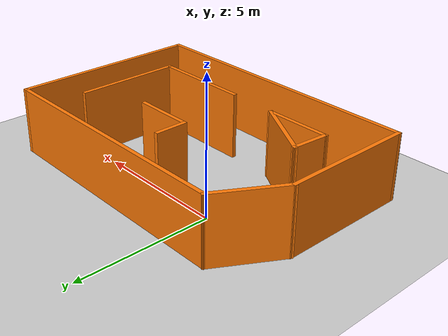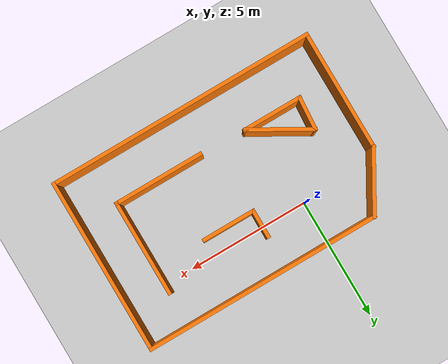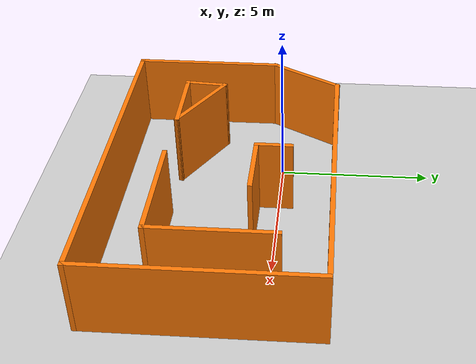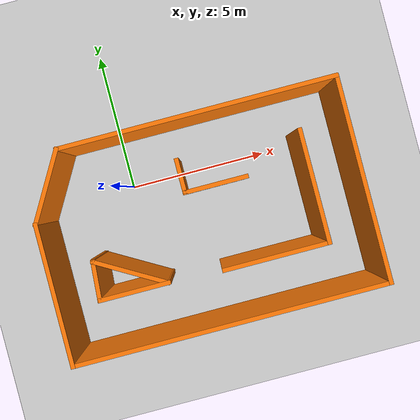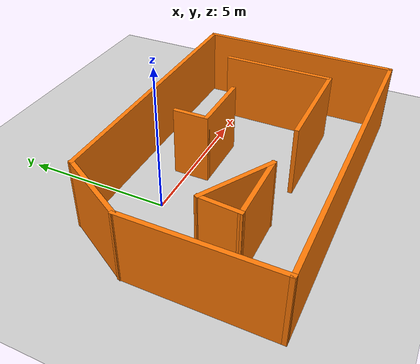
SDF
<sdf version="1.6">
 <world name="default">
  <light name="sun" type="directional">
   <pose>0 0 10 0 -0 0</pose>
   <diffuse>0.8 0.8 0.8 1</diffuse>
   <specular>0.2 0.2 0.2 1</specular>
   <attenuation>
    <range>1000</range>
    <constant>0.9</constant>
    <linear>0.01</linear>
    <quadratic>0.001</quadratic>
   </attenuation>
   <direction>-0.5 0.1 -0.9</direction>
  </light>
  <model name="ground_plane">
   <static>1</static>
   <link name="link">
    <collision name="collision">
     <geometry><plane><normal>0 0 1</normal><size>100 100</size></plane></geometry>
     <surface>
      <contact><collide_bitmask>65535</collide_bitmask></contact>
      <friction><ode><mu>100</mu><mu2>50</mu2></ode></friction>
     </surface>
    </collision>
    <visual name="visual">
     <cast_shadows>0</cast_shadows>
     <geometry><plane><normal>0 0 1</normal><size>100 100</size></plane></geometry>
     <material>
      <script><uri>file://media/materials/scripts/gazebo.material</uri><name>Gazebo/Grey</name></script>
     </material>
    </visual>
   </link>
  </model>
  <gravity>0 0 -9.8</gravity>
  <magnetic_field>6e-06 2.3e-05 -4.2e-05</magnetic_field>
  <atmosphere type="adiabatic"/>
  <physics name="default_physics" default="0" type="ode">
   <max_step_size>0.001</max_step_size>
   <real_time_factor>1</real_time_factor>
   <real_time_update_rate>1000</real_time_update_rate>
  </physics>
  <scene><ambient>0.4 0.4 0.4 1</ambient><background>0.7 0.7 0.7 1</background><shadows>1</shadows></scene>
  <audio><device>default</device></audio>
  <spherical_coordinates>
   <surface_model>EARTH_WGS84</surface_model>
   <latitude_deg>0</latitude_deg>
   <longitude_deg>0</longitude_deg>
   <elevation>0</elevation>
   <heading_deg>0</heading_deg>
  </spherical_coordinates>
  <model name="customWorld">
   <pose>2.27381 -1.7635 0 0 -0 0</pose>
   <link name="Wall_43">
    <collision name="Wall_43_Collision">
     <geometry><box><size>5 0.15 2.5</size></box></geometry>
     <pose>0 0 1.25 0 -0 0</pose>
    </collision>
    <visual name="Wall_43_Visual">
     <pose>0 0 1.25 0 -0 0</pose>
     <geometry><box><size>5 0.15 2.5</size></box></geometry>
     <material>
      <script><uri>file://media/materials/scripts/gazebo.material</uri><name>Gazebo/Grey</name></script>
      <ambient>0.996078 0.47451 0.0196078 1</ambient>
     </material>
     <meta><layer>0</layer></meta>
    </visual>
    <pose>-5.43628 -1.13955 0 0 -0 1.5708</pose>
   </link>
   <link name="Wall_45">
    <collision name="Wall_45_Collision">
     <geometry><box><size>2.75 0.15 2.5</size></box></geometry>
     <pose>0 0 1.25 0 -0 0</pose>
    </collision>
    <visual name="Wall_45_Visual">
     <pose>0 0 1.25 0 -0 0</pose>
     <geometry><box><size>2.75 0.15 2.5</size></box></geometry>
     <material>
      <script><uri>file://media/materials/scripts/gazebo.material</uri><name>Gazebo/Grey</name></script>
      <ambient>0.996078 0.47451 0.0196078 1</ambient>
     </material>
     <meta><layer>0</layer></meta>
    </visual>
    <pose>-4.78628 2.41128 0 0 -0 1.0472</pose>
   </link>
   <link name="Wall_46">
    <collision name="Wall_46_Collision">
     <geometry><box><size>9.75 0.15 2.5</size></box></geometry>
     <pose>0 0 1.25 0 -0 0</pose>
    </collision>
    <visual name="Wall_46_Visual">
     <pose>0 0 1.25 0 -0 0</pose>
     <geometry><box><size>9.75 0.15 2.5</size></box></geometry>
     <material>
      <script><uri>file://media/materials/scripts/gazebo.material</uri><name>Gazebo/Grey</name></script>
      <ambient>0.996078 0.47451 0.0196078 1</ambient>
     </material>
     <meta><layer>0</layer></meta>
    </visual>
    <pose>0.66372 3.53711 0 0 -0 0</pose>
   </link>
   <link name="Wall_47">
    <collision name="Wall_47_Collision">
     <geometry><box><size>7.25 0.15 2.5</size></box></geometry>
     <pose>0 0 1.25 0 -0 0</pose>
    </collision>
    <visual name="Wall_47_Visual">
     <pose>0 0 1.25 0 -0 0</pose>
     <geometry><box><size>7.25 0.15 2.5</size></box></geometry>
     <material>
      <script><uri>file://media/materials/scripts/gazebo.material</uri><name>Gazebo/Grey</name></script>
      <ambient>0.996078 0.47451 0.0196078 1</ambient>
     </material>
     <meta><layer>0</layer></meta>
    </visual>
    <pose>5.46372 -0.012887 0 0 -0 -1.5708</pose>
   </link>
   <link name="Wall_48">
    <collision name="Wall_48_Collision">
     <geometry><box><size>11.05 0.15 2.5</size></box></geometry>
     <pose>0 0 1.25 0 -0 0</pose>
    </collision>
    <visual name="Wall_48_Visual">
     <pose>0 0 1.25 0 -0 0</pose>
     <geometry><box><size>11.05 0.15 2.5</size></box></geometry>
     <material>
      <script><uri>file://media/materials/scripts/gazebo.material</uri><name>Gazebo/Grey</name></script>
      <ambient>0.996078 0.47451 0.0196078 1</ambient>
     </material>
     <meta><layer>0</layer></meta>
    </visual>
    <pose>0.01372 -3.56372 0 0 -0 -3.14144</pose>
   </link>
   <link name="Wall_50">
    <collision name="Wall_50_Collision">
     <geometry><box><size>4 0.15 2.5</size></box></geometry>
     <pose>0 0 1.25 0 -0 0</pose>
    </collision>
    <visual name="Wall_50_Visual">
     <pose>0 0 1.25 0 -0 0</pose>
     <geometry><box><size>4 0.15 2.5</size></box></geometry>
     <material>
      <script><uri>file://media/materials/scripts/gazebo.material</uri><name>Gazebo/Grey</name></script>
      <ambient>0.996078 0.47451 0.0196078 1</ambient>
     </material>
     <meta><layer>0</layer></meta>
    </visual>
    <pose>3.83272 0.168447 0 0 -0 -1.5708</pose>
   </link>
   <link name="Wall_51">
    <collision name="Wall_51_Collision">
     <geometry><box><size>3.75 0.15 2.5</size></box></geometry>
     <pose>0 0 1.25 0 -0 0</pose>
    </collision>
    <visual name="Wall_51_Visual">
     <pose>0 0 1.25 0 -0 0</pose>
     <geometry><box><size>3.75 0.15 2.5</size></box></geometry>
     <material>
      <script><uri>file://media/materials/scripts/gazebo.material</uri><name>Gazebo/Grey</name></script>
      <ambient>0.996078 0.47451 0.0196078 1</ambient>
     </material>
     <meta><layer>0</layer></meta>
    </visual>
    <pose>2.03272 -1.75655 0 0 -0 3.14159</pose>
   </link>
   <link name="Wall_53">
    <collision name="Wall_53_Collision">
     <geometry><box><size>2.5 0.15 2.5</size></box></geometry>
     <pose>0 0 1.25 0 -0 0</pose>
    </collision>
    <visual name="Wall_53_Visual">
     <pose>0 0 1.25 0 -0 0</pose>
     <geometry><box><size>2.5 0.15 2.5</size></box></geometry>
     <material>
      <script><uri>file://media/materials/scripts/gazebo.material</uri><name>Gazebo/Grey</name></script>
      <ambient>0.996078 0.47451 0.0196078 1</ambient>
     </material>
     <meta><layer>0</layer></meta>
    </visual>
    <pose>-2.83528 -1.67855 0 0 -0 0</pose>
   </link>
   <link name="Wall_54">
    <collision name="Wall_54_Collision">
     <geometry><box><size>2.75 0.15 2.5</size></box></geometry>
     <pose>0 0 1.25 0 -0 0</pose>
    </collision>
    <visual name="Wall_54_Visual">
     <pose>0 0 1.25 0 -0 0</pose>
     <geometry><box><size>2.75 0.15 2.5</size></box></geometry>
     <material>
      <script><uri>file://media/materials/scripts/gazebo.material</uri><name>Gazebo/Grey</name></script>
      <ambient>0.996078 0.47451 0.0196078 1</ambient>
     </material>
     <meta><layer>0</layer></meta>
    </visual>
    <pose>-2.78611 -1.02855 0 0 -0 2.61799</pose>
   </link>
   <link name="Wall_55">
    <collision name="Wall_55_Collision">
     <geometry><box><size>1.45371 0.15 2.5</size></box></geometry>
     <pose>0 0 1.25 0 -0 0</pose>
    </collision>
    <visual name="Wall_55_Visual">
     <pose>0 0 1.25 0 -0 0</pose>
     <geometry><box><size>1.45371 0.15 2.5</size></box></geometry>
     <material>
      <script><uri>file://media/materials/scripts/gazebo.material</uri><name>Gazebo/Grey</name></script>
      <ambient>0.996078 0.47451 0.0196078 1</ambient>
     </material>
     <meta><layer>0</layer></meta>
    </visual>
    <pose>-3.96111 -1.02855 0 0 -0 -1.64629</pose>
   </link>
   <link name="Wall_57">
    <collision name="Wall_57_Collision">
     <geometry><box><size>1.25 0.15 2.5</size></box></geometry>
     <pose>0 0 1.25 0 -0 0</pose>
    </collision>
    <visual name="Wall_57_Visual">
     <pose>0 0 1.25 0 -0 0</pose>
     <geometry><box><size>1.25 0.15 2.5</size></box></geometry>
     <material>
      <script><uri>file://media/materials/scripts/gazebo.material</uri><name>Gazebo/Grey</name></script>
      <ambient>0.996078 0.47451 0.0196078 1</ambient>
     </material>
     <meta><layer>0</layer></meta>
    </visual>
    <pose>-0.37628 1.61245 0 0 -0 -1.5708</pose>
   </link>
   <link name="Wall_58">
    <collision name="Wall_58_Collision">
     <geometry><box><size>2.25 0.15 2.5</size></box></geometry>
     <pose>0 0 1.25 0 -0 0</pose>
    </collision>
    <visual name="Wall_58_Visual">
     <pose>0 0 1.25 0 -0 0</pose>
     <geometry><box><size>2.25 0.15 2.5</size></box></geometry>
     <material>
      <script><uri>file://media/materials/scripts/gazebo.material</uri><name>Gazebo/Grey</name></script>
      <ambient>0.996078 0.47451 0.0196078 1</ambient>
     </material>
     <meta><layer>0</layer></meta>
    </visual>
    <pose>0.67372 1.06245 0 0 -0 0</pose>
   </link>
   <static>1</static>
  </model>
 </world>
</sdf>
